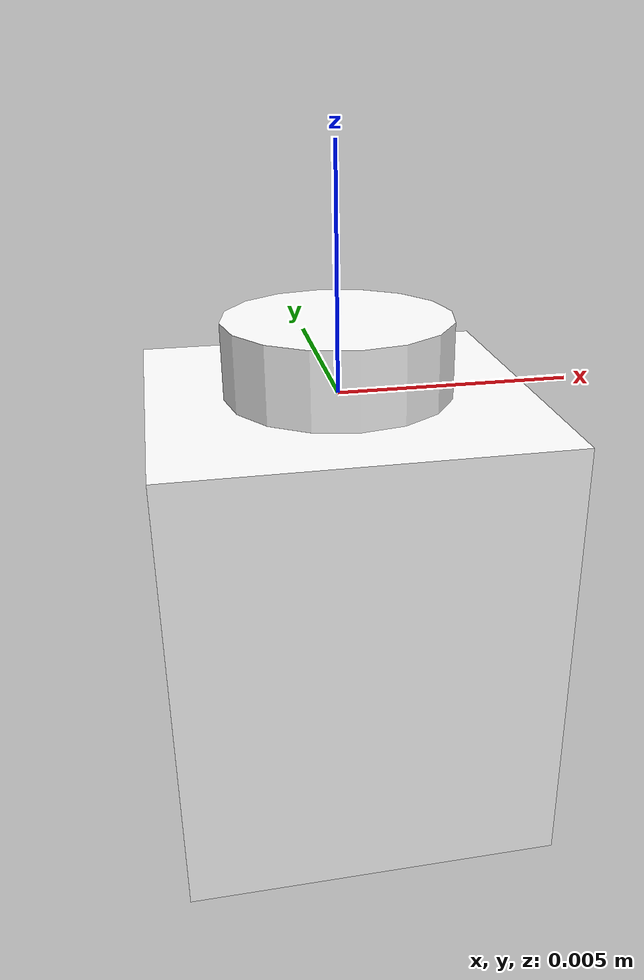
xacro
<?xml version="1.0" encoding="utf-8"?>
<robot
  name="b1x1" xmlns:xacro="http://ros.org/wiki/xacro">
  <xacro:macro name="b1x1">
  <xacro:arg name="brick_color" default="Orange" />
  <xacro:property name="scale" value="0.001"/>
  <xacro:property name="color" value="$(arg brick_color)"/>
  <link
    name="brick">
    <inertial>
      <origin
        xyz="0 0 0"
        rpy="0 0 0" />
      <mass
        value="0.001" />
      <inertia
        ixx="0"
        ixy="-0.0"
        ixz="0.0"
        iyy="0.0"
        iyz="0.0"
        izz="0.0" />
    </inertial>
    <visual>
      <origin
        xyz="0 0 0"
        rpy="0 0 ${pi/2}" />
      <geometry>
        <mesh scale="${scale} ${scale} ${scale}"
          filename="file://$(find robot_digital_twin)/meshes/lego/b1x1.stl"/>
      </geometry>
      <material
        name="">
        <color
          rgba="1 1 1 1" />
      </material>
    </visual>
    <gravity>0</gravity>
  </link>

  <gazebo reference="brick">
  <kinematic>true</kinematic>
  <xacro:if value="${color == 'Orange'}">
     <material>Gazebo/Orange</material>
    </xacro:if>
    <xacro:if value="${color == 'Green'}">
     <material>Gazebo/Green</material>
    </xacro:if>
    <xacro:if value="${color == 'Black'}">
     <material>Gazebo/Black</material>
    </xacro:if>
    <xacro:if value="${color == 'Blue'}">
     <material>Gazebo/Blue</material>
     </xacro:if>
     <xacro:if value="${color == 'Yellow'}">
     <material>Gazebo/Yellow</material>
    </xacro:if>
    <xacro:if value="${color == 'Red'}">
     <material>Gazebo/Red</material>
    </xacro:if>
    <xacro:if value="${color == 'White'}">
     <material>Gazebo/White</material>
    </xacro:if>
    <xacro:if value="${color == 'Grey'}">
     <material>Gazebo/Grey</material>
    </xacro:if>
    <xacro:if value="${color == 'Purple'}">
     <material>Gazebo/Purple</material>
    </xacro:if>
    <visual> <transparency> 0 </transparency> </visual>
  </gazebo>
  </xacro:macro>

  <xacro:b1x1>
  </xacro:b1x1>

</robot>
